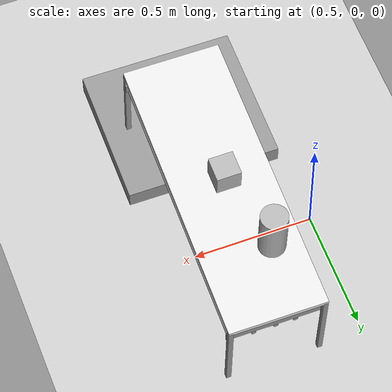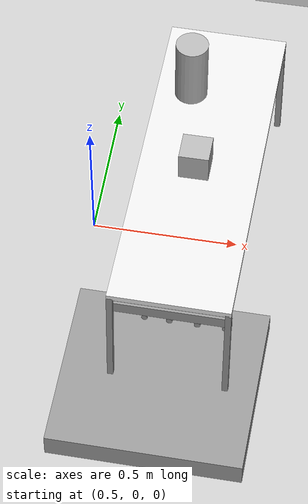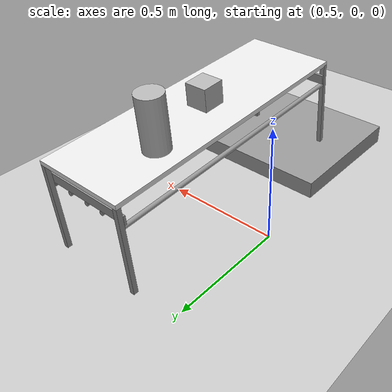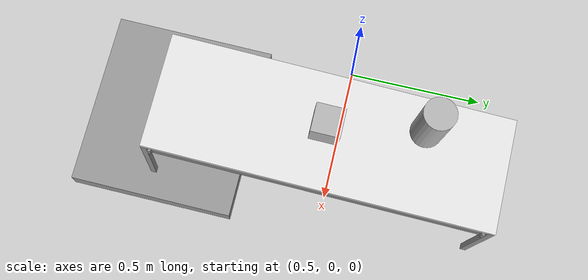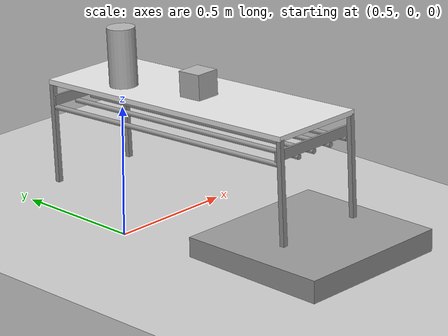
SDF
<sdf version="1.7">
 <world name="default">
  <physics name="default_physics" default="0" type="ode">
   <max_step_size>0.001</max_step_size>
   <real_time_factor>1</real_time_factor>
   <real_time_update_rate>1000</real_time_update_rate>
  </physics>
  <light name="sun" type="directional">
   <pose>0 0 10 0 -0 0</pose>
   <diffuse>0.8 0.8 0.8 1</diffuse>
   <specular>0.2 0.2 0.2 1</specular>
   <attenuation><range>1000</range><constant>1</constant><linear>0</linear><quadratic>0</quadratic></attenuation>
   <direction>-0.5 0.1 -0.9</direction>
   <spot><inner_angle>0</inner_angle><outer_angle>0</outer_angle><falloff>0</falloff></spot>
  </light>
  <model name="ground_plane">
   <static>1</static>
   <link name="link">
    <collision name="collision">
     <geometry><plane><normal>0 0 1</normal><size>100 100</size></plane></geometry>
     <surface>
      <contact><collide_bitmask>65535</collide_bitmask></contact>
      <friction><ode><mu>100</mu><mu2>50</mu2></ode></friction>
     </surface>
    </collision>
    <visual name="visual">
     <cast_shadows>0</cast_shadows>
     <geometry><plane><normal>0 0 1</normal><size>100 100</size></plane></geometry>
     <material>
      <script><uri>file://media/materials/scripts/gazebo.material</uri><name>Gazebo/Grey</name></script>
     </material>
    </visual>
   </link>
  </model>
  <gravity>0 0 -9.8</gravity>
  <magnetic_field>6e-06 2.3e-05 -4.2e-05</magnetic_field>
  <atmosphere type="adiabatic"/>
  <scene><ambient>0.4 0.4 0.4 1</ambient><background>0.7 0.7 0.7 1</background><shadows>1</shadows></scene>
  <spherical_coordinates>
   <surface_model>EARTH_WGS84</surface_model>
   <latitude_deg>0</latitude_deg>
   <longitude_deg>0</longitude_deg>
   <elevation>0</elevation>
   <heading_deg>0</heading_deg>
  </spherical_coordinates>
  <model name="wrc_long_table">
   <static>1</static>
   <link name="link">
    <inertial><mass>1</mass></inertial>
    <collision name="top">
     <pose>0 0 0.39 0 -0 0</pose>
     <geometry><box><size>1.2 0.4 0.02</size></box></geometry>
    </collision>
    <visual name="top_v">
     <pose>0 0 0.39 0 -0 0</pose>
     <geometry><box><size>1.2 0.4 0.02</size></box></geometry>
     <material>
      <script><uri>file://media/materials/scripts/gazebo.material</uri><name>Gazebo/White</name></script>
     </material>
    </visual>
    <collision name="leg1">
     <pose>0.59 0.19 0.185 0 -0 0</pose>
     <geometry><box><size>0.02 0.02 0.4</size></box></geometry>
    </collision>
    <visual name="leg1_v">
     <pose>0.59 0.19 0.185 0 -0 0</pose>
     <geometry><box><size>0.02 0.02 0.4</size></box></geometry>
     <material>
      <script><uri>file://media/materials/scripts/gazebo.material</uri><name>Gazebo/Gray</name></script>
     </material>
    </visual>
    <collision name="leg2">
     <pose>-0.59 0.19 0.185 0 -0 0</pose>
     <geometry><box><size>0.02 0.02 0.4</size></box></geometry>
    </collision>
    <visual name="leg2_v">
     <pose>-0.59 0.19 0.185 0 -0 0</pose>
     <geometry><box><size>0.02 0.02 0.4</size></box></geometry>
     <material>
      <script><uri>file://media/materials/scripts/gazebo.material</uri><name>Gazebo/Gray</name></script>
     </material>
    </visual>
    <collision name="leg3">
     <pose>0.59 -0.19 0.185 0 -0 0</pose>
     <geometry><box><size>0.02 0.02 0.4</size></box></geometry>
    </collision>
    <visual name="leg3_v">
     <pose>0.59 -0.19 0.185 0 -0 0</pose>
     <geometry><box><size>0.02 0.02 0.4</size></box></geometry>
     <material>
      <script><uri>file://media/materials/scripts/gazebo.material</uri><name>Gazebo/Gray</name></script>
     </material>
    </visual>
    <collision name="leg4">
     <pose>-0.59 -0.19 0.185 0 -0 0</pose>
     <geometry><box><size>0.02 0.02 0.4</size></box></geometry>
    </collision>
    <visual name="leg4_v">
     <pose>-0.59 -0.19 0.185 0 -0 0</pose>
     <geometry><box><size>0.02 0.02 0.4</size></box></geometry>
     <material>
      <script><uri>file://media/materials/scripts/gazebo.material</uri><name>Gazebo/Gray</name></script>
     </material>
    </visual>
    <collision name="side_panel1">
     <pose>0.575 0 0.32 0 -0 0</pose>
     <geometry><box><size>0.01 0.4 0.04</size></box></geometry>
    </collision>
    <visual name="side_panel1_v">
     <pose>0.575 0 0.32 0 -0 0</pose>
     <geometry><box><size>0.01 0.4 0.04</size></box></geometry>
     <material>
      <script><uri>file://media/materials/scripts/gazebo.material</uri><name>Gazebo/Gray</name></script>
     </material>
    </visual>
    <collision name="side_panel2">
     <pose>-0.575 0 0.32 0 -0 0</pose>
     <geometry><box><size>0.01 0.4 0.04</size></box></geometry>
    </collision>
    <visual name="side_panel2_v">
     <pose>-0.575 0 0.32 0 -0 0</pose>
     <geometry><box><size>0.01 0.4 0.04</size></box></geometry>
     <material>
      <script><uri>file://media/materials/scripts/gazebo.material</uri><name>Gazebo/Gray</name></script>
     </material>
    </visual>
    <collision name="bar1">
     <pose>0 0.2 0.29 0 1.57 0</pose>
     <geometry><cylinder><radius>0.01</radius><length>1.16</length></cylinder></geometry>
    </collision>
    <visual name="bar1_v">
     <pose>0 0.19 0.29 0 1.57 0</pose>
     <geometry><cylinder><radius>0.01</radius><length>1.16</length></cylinder></geometry>
     <material>
      <script><uri>file://media/materials/scripts/gazebo.material</uri><name>Gazebo/Gray</name></script>
     </material>
    </visual>
    <collision name="bar2">
     <pose>0 0.08 0.29 0 1.57 0</pose>
     <geometry><cylinder><radius>0.01</radius><length>1.16</length></cylinder></geometry>
    </collision>
    <visual name="bar2_v">
     <pose>0 0.08 0.29 0 1.57 0</pose>
     <geometry><cylinder><radius>0.01</radius><length>1.16</length></cylinder></geometry>
     <material>
      <script><uri>file://media/materials/scripts/gazebo.material</uri><name>Gazebo/Gray</name></script>
     </material>
    </visual>
    <collision name="bar3">
     <pose>0 0 0.29 0 1.57 0</pose>
     <geometry><cylinder><radius>0.01</radius><length>1.16</length></cylinder></geometry>
    </collision>
    <visual name="bar3_v">
     <pose>0 0 0.29 0 1.57 0</pose>
     <geometry><cylinder><radius>0.01</radius><length>1.16</length></cylinder></geometry>
     <material>
      <script><uri>file://media/materials/scripts/gazebo.material</uri><name>Gazebo/Gray</name></script>
     </material>
    </visual>
    <collision name="bar4">
     <pose>0 -0.08 0.29 0 1.57 0</pose>
     <geometry><cylinder><radius>0.01</radius><length>1.16</length></cylinder></geometry>
    </collision>
    <visual name="bar4_v">
     <pose>0 -0.09 0.29 0 1.57 0</pose>
     <geometry><cylinder><radius>0.01</radius><length>1.16</length></cylinder></geometry>
     <material>
      <script><uri>file://media/materials/scripts/gazebo.material</uri><name>Gazebo/Gray</name></script>
     </material>
    </visual>
    <collision name="bar5">
     <pose>0 -0.18 0.29 0 1.57 0</pose>
     <geometry><cylinder><radius>0.01</radius><length>1.16</length></cylinder></geometry>
    </collision>
    <visual name="bar5_v">
     <pose>0 -0.18 0.29 0 1.57 0</pose>
     <geometry><cylinder><radius>0.01</radius><length>1.16</length></cylinder></geometry>
     <material>
      <script><uri>file://media/materials/scripts/gazebo.material</uri><name>Gazebo/Gray</name></script>
     </material>
    </visual>
   </link>
   <pose>0.871421 -0.043233 0.060821 0 0.05843 1.56133</pose>
  </model>
  <light name="user_spot_light_0" type="spot">
   <pose>0.988981 0.326539 1 0 -0 0</pose>
   <diffuse>0.9 0.9 0.9 1</diffuse>
   <specular>0.1 0.1 0.1 1</specular>
   <direction>0 0 -1</direction>
   <attenuation>
    <range>200</range>
    <constant>0.2</constant>
    <linear>0.2</linear>
    <quadratic>0.001</quadratic>
   </attenuation>
   <cast_shadows>0</cast_shadows>
   <spot><inner_angle>0.6</inner_angle><outer_angle>1</outer_angle><falloff>1</falloff></spot>
  </light>
  <audio><device>default</device></audio>
  <model name="unit_box">
   <pose>0.835634 -0.622904 0.030964 -0.016587 8e-06 -0.00923</pose>
   <link name="link">
    <inertial>
     <mass>1</mass>
     <inertia>
      <ixx>0.166667</ixx>
      <ixy>0</ixy>
      <ixz>0</ixz>
      <iyy>0.166667</iyy>
      <iyz>0</iyz>
      <izz>0.166667</izz>
     </inertia>
    </inertial>
    <collision name="collision"><geometry><box><size>0.646849 0.602268 0.0975</size></box></geometry></collision>
    <visual name="visual">
     <geometry><box><size>0.646849 0.602268 0.0975</size></box></geometry>
     <material>
      <script><name>Gazebo/Grey</name><uri>file://media/materials/scripts/gazebo.material</uri></script>
     </material>
    </visual>
   </link>
  </model>
  <model name="beer">
   <link name="link">
    <pose>0 0 0.115 0 -0 0</pose>
    <inertial>
     <mass>0.39</mass>
     <inertia><ixx>0.00058</ixx><ixy>0</ixy><ixz>0</ixz><iyy>0.00058</iyy><iyz>0</iyz><izz>0.00019</izz></inertia>
    </inertial>
    <collision name="collision">
     <geometry><cylinder><radius>0.055</radius><length>0.23</length></cylinder></geometry>
    </collision>
    <visual name="visual">
     <geometry><cylinder><radius>0.055</radius><length>0.23</length></cylinder></geometry>
     <material>
      <script>
       <uri>model://beer/materials/scripts</uri>
       <uri>model://beer/materials/textures</uri>
       <name>Beer/Diffuse</name>
      </script>
     </material>
    </visual>
   </link>
   <pose>0.7917 0.287549 0.442202 -0.058432 0.000524 -0.000941</pose>
  </model>
  <model name="camera">
   <pose>0.859073 -0.038785 0.511337 -0.058427 0.000552 -3.8e-05</pose>
   <link name="link">
    <inertial>
     <mass>0.1</mass>
     <inertia>
      <ixx>0.000166667</ixx>
      <iyy>0.000166667</iyy>
      <izz>0.000166667</izz>
      <ixy>0</ixy>
      <ixz>0</ixz>
      <iyz>0</iyz>
     </inertia>
    </inertial>
    <collision name="collision"><geometry><box><size>0.1 0.1 0.1</size></box></geometry></collision>
    <visual name="visual"><geometry><box><size>0.1 0.1 0.1</size></box></geometry></visual>
    <sensor name="camera" type="camera">
     <camera>
      <horizontal_fov>1.047</horizontal_fov>
      <image><width>320</width><height>240</height></image>
      <clip><near>0.1</near><far>100</far></clip>
     </camera>
     <always_on>1</always_on>
     <update_rate>30</update_rate>
     <visualize>1</visualize>
    </sensor>
   </link>
  </model>
 </world>
</sdf>
